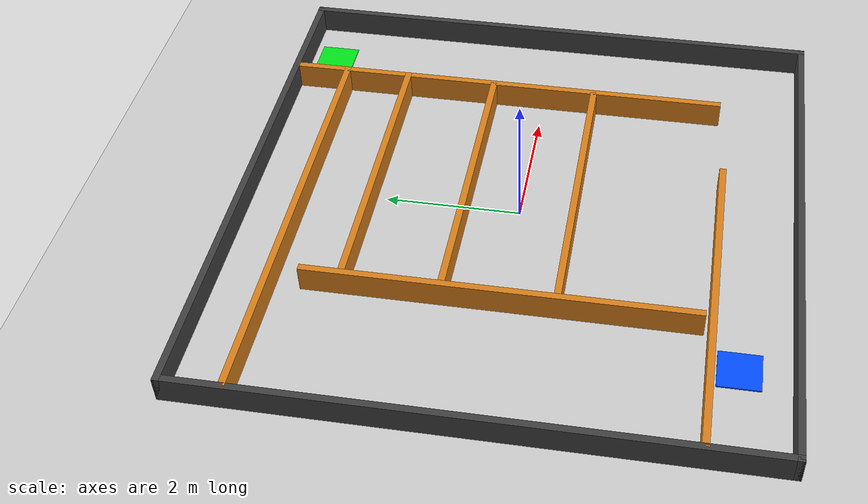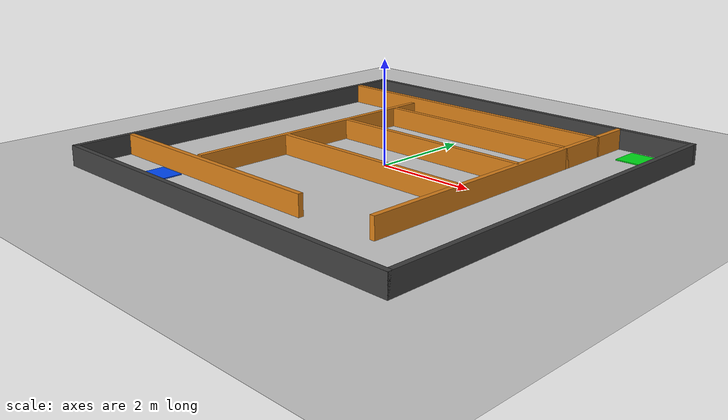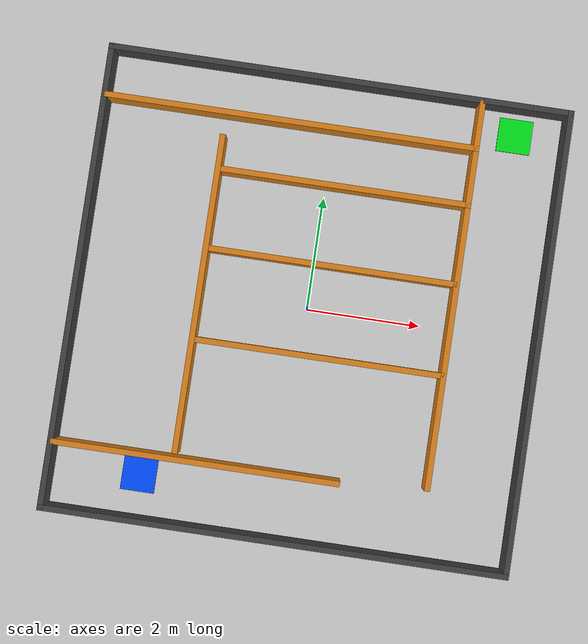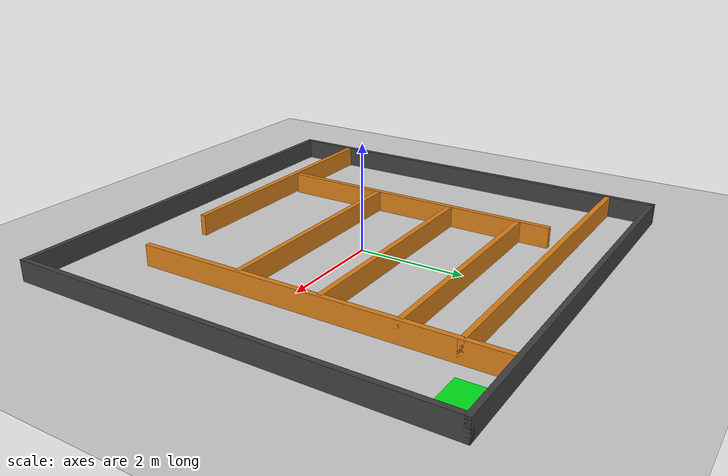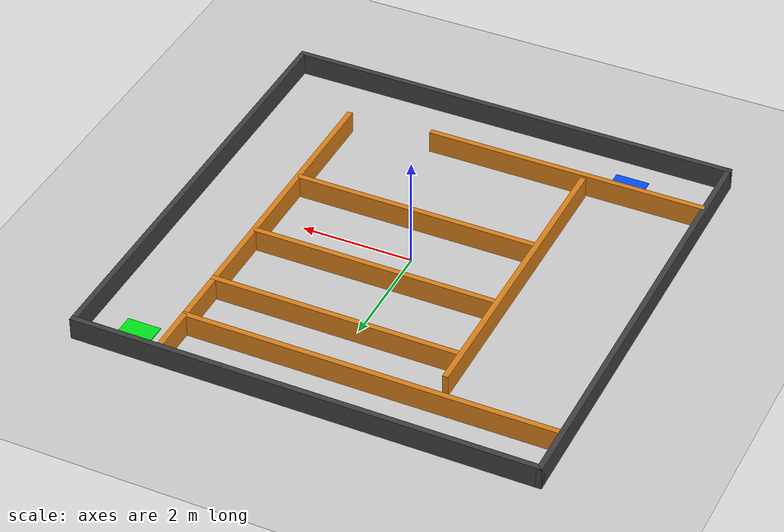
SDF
<?xml version="1.0"?>
<sdf version="1.6">
  <world name="maze_world">

    <include><uri>model://ground_plane</uri></include>

    <light name="sun" type="directional">
      <cast_shadows>true</cast_shadows>
      <pose>0 0 10 0 0 0</pose>
      <diffuse>1 1 1 1</diffuse>
      <direction>-0.5 0.1 -0.9</direction>
    </light>

    <!-- Outer boundary 8 m x 8 m (inner face ±4.05 m) -->
    <model name="outer_north">
      <static>true</static><pose>0 4.05 0.2 0 0 0</pose>
      <link name="link">
        <collision name="c"><geometry><box><size>8.2 0.1 0.4</size></box></geometry></collision>
        <visual name="v"><geometry><box><size>8.2 0.1 0.4</size></box></geometry>
          <material><ambient>0.25 0.25 0.25 1</ambient></material></visual>
      </link>
    </model>
    <model name="outer_south">
      <static>true</static><pose>0 -4.05 0.2 0 0 0</pose>
      <link name="link">
        <collision name="c"><geometry><box><size>8.2 0.1 0.4</size></box></geometry></collision>
        <visual name="v"><geometry><box><size>8.2 0.1 0.4</size></box></geometry>
          <material><ambient>0.25 0.25 0.25 1</ambient></material></visual>
      </link>
    </model>
    <model name="outer_east">
      <static>true</static><pose>4.05 0 0.2 0 0 0</pose>
      <link name="link">
        <collision name="c"><geometry><box><size>0.1 8.2 0.4</size></box></geometry></collision>
        <visual name="v"><geometry><box><size>0.1 8.2 0.4</size></box></geometry>
          <material><ambient>0.25 0.25 0.25 1</ambient></material></visual>
      </link>
    </model>
    <model name="outer_west">
      <static>true</static><pose>-4.05 0 0.2 0 0 0</pose>
      <link name="link">
        <collision name="c"><geometry><box><size>0.1 8.2 0.4</size></box></geometry></collision>
        <visual name="v"><geometry><box><size>0.1 8.2 0.4</size></box></geometry>
          <material><ambient>0.25 0.25 0.25 1</ambient></material></visual>
      </link>
    </model>

    <!-- h1: bottom divider y=-2.9
         spans x=-4.05 to x=1.0  |  gap RIGHT: x=1.0 to 4.05 -->
    <model name="h1">
      <static>true</static>
      <pose>-1.525 -2.9 0.2 0 0 0</pose>
      <link name="link">
        <collision name="c"><geometry><box><size>5.05 0.1 0.4</size></box></geometry></collision>
        <visual name="v"><geometry><box><size>5.05 0.1 0.4</size></box></geometry>
          <material><ambient>0.85 0.50 0.10 1</ambient></material></visual>
      </link>
    </model>

    <!-- vL: left vertical  x=-1.9  y=-2.8 to 2.8 -->
    <model name="vL">
      <static>true</static>
      <pose>-1.9 0.0 0.2 0 0 0</pose>
      <link name="link">
        <collision name="c"><geometry><box><size>0.1 5.6 0.4</size></box></geometry></collision>
        <visual name="v"><geometry><box><size>0.1 5.6 0.4</size></box></geometry>
          <material><ambient>0.85 0.50 0.10 1</ambient></material></visual>
      </link>
    </model>

    <!-- h2: second divider  y=-0.8
         spans x=-1.85 to x=2.5  |  gaps: left (-4.05..-1.9) and right (2.5..4.05) -->
    <model name="h2">
      <static>true</static>
      <pose>0.325 -0.8 0.2 0 0 0</pose>
      <link name="link">
        <collision name="c"><geometry><box><size>4.35 0.1 0.4</size></box></geometry></collision>
        <visual name="v"><geometry><box><size>4.35 0.1 0.4</size></box></geometry>
          <material><ambient>0.85 0.50 0.10 1</ambient></material></visual>
      </link>
    </model>

    <!-- h3: third divider  y=0.8
         spans x=-1.85 to x=2.5  |  same gaps as h2 -->
    <model name="h3">
      <static>true</static>
      <pose>0.325 0.8 0.2 0 0 0</pose>
      <link name="link">
        <collision name="c"><geometry><box><size>4.35 0.1 0.4</size></box></geometry></collision>
        <visual name="v"><geometry><box><size>4.35 0.1 0.4</size></box></geometry>
          <material><ambient>0.85 0.50 0.10 1</ambient></material></visual>
      </link>
    </model>

    <!-- vR: right vertical  x=2.5  y=-2.8 to 4.05 -->
    <model name="vR">
      <static>true</static>
      <pose>2.5 0.625 0.2 0 0 0</pose>
      <link name="link">
        <collision name="c"><geometry><box><size>0.1 6.85 0.4</size></box></geometry></collision>
        <visual name="v"><geometry><box><size>0.1 6.85 0.4</size></box></geometry>
          <material><ambient>0.85 0.50 0.10 1</ambient></material></visual>
      </link>
    </model>

    <!-- h4: fourth divider  y=2.2
         spans x=-1.85 to x=2.55  |  same gaps as h2/h3 -->
    <model name="h4">
      <static>true</static>
      <pose>0.35 2.2 0.2 0 0 0</pose>
      <link name="link">
        <collision name="c"><geometry><box><size>4.4 0.1 0.4</size></box></geometry></collision>
        <visual name="v"><geometry><box><size>4.4 0.1 0.4</size></box></geometry>
          <material><ambient>0.85 0.50 0.10 1</ambient></material></visual>
      </link>
    </model>

    <!-- h5: top divider  y=3.2
         spans x=-4.05 to x=2.55  |  gap RIGHT: x=2.55 to 4.05 → GOAL -->
    <model name="h5">
      <static>true</static>
      <pose>-0.75 3.2 0.2 0 0 0</pose>
      <link name="link">
        <collision name="c"><geometry><box><size>6.6 0.1 0.4</size></box></geometry></collision>
        <visual name="v"><geometry><box><size>6.6 0.1 0.4</size></box></geometry>
          <material><ambient>0.85 0.50 0.10 1</ambient></material></visual>
      </link>
    </model>

    <!-- START marker (blue)  robot spawns here facing East -->
    <model name="start_marker">
      <static>true</static><pose>-2.5 -3.3 0.01 0 0 0</pose>
      <link name="link">
        <visual name="v">
          <geometry><box><size>0.6 0.6 0.02</size></box></geometry>
          <material><ambient>0.0 0.3 1.0 1</ambient></material>
        </visual>
      </link>
    </model>

    <!-- GOAL marker (green) — top-right pocket above h5, east of vR -->
    <model name="goal_marker">
      <static>true</static><pose>3.2 3.6 0.01 0 0 0</pose>
      <link name="link">
        <visual name="v">
          <geometry><box><size>0.6 0.6 0.02</size></box></geometry>
          <material><ambient>0.0 0.9 0.1 1</ambient></material>
        </visual>
      </link>
    </model>

  </world>
</sdf>
